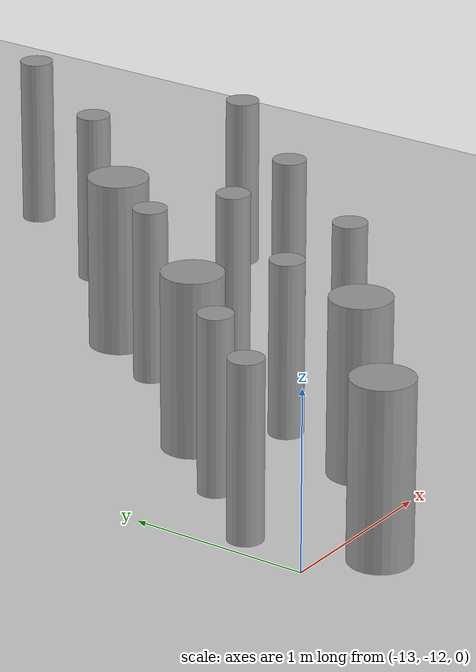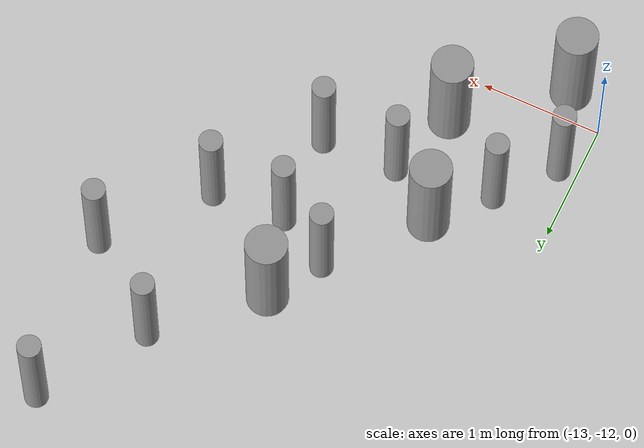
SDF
<sdf version="1.6">
 <world name="default">
  <model name="ground_plane">
   <static>1</static>
   <link name="link">
    <collision name="collision">
     <geometry><plane><normal>0 0 1</normal><size>100 100</size></plane></geometry>
     <surface><friction><ode><mu>100</mu><mu2>50</mu2></ode></friction></surface>
    </collision>
    <visual name="visual">
     <cast_shadows>0</cast_shadows>
     <geometry><plane><normal>0 0 1</normal><size>100 100</size></plane></geometry>
     <material>
      <script><uri>file://media/materials/scripts/gazebo.material</uri><name>Gazebo/Grey</name></script>
     </material>
    </visual>
   </link>
  </model>
  <model name="cyl_wall_clone_clone_1_clone_1_clone_clone_0_clone_1_clone_1_clone_1">
   <link name="link_0">
    <pose>-2.73893 -0.366465 0 0 -0 0</pose>
    <inertial>
     <mass>0.0374993</mass>
     <inertia>
      <ixx>0.00321281</ixx>
      <ixy>0</ixy>
      <ixz>0</ixz>
      <iyy>0.00321281</iyy>
      <iyz>0</iyz>
      <izz>0.000175774</izz>
     </inertia>
    </inertial>
    <visual name="visual">
     <geometry><cylinder><radius>0.0968661</radius><length>1</length></cylinder></geometry>
     <material>
      <lighting>1</lighting>
      <script><uri>file://media/materials/scripts/gazebo.material</uri><name>Gazebo/Grey</name></script>
      <ambient>0.3 0.3 0.3 1</ambient>
      <diffuse>0.7 0.7 0.7 1</diffuse>
      <specular>0.01 0.01 0.01 1</specular>
      <emissive>0 0 0 1</emissive>
     </material>
    </visual>
    <collision name="collision">
     <geometry><cylinder><radius>0.096866</radius><length>1</length></cylinder></geometry>
     <surface>
      <friction>
       <ode><mu>1</mu><mu2>1</mu2><fdir1>0 0 0</fdir1><slip1>0</slip1><slip2>0</slip2></ode>
       <torsional>
        <coefficient>1</coefficient>
        <patch_radius>0</patch_radius>
        <surface_radius>0</surface_radius>
        <use_patch_radius>1</use_patch_radius>
        <ode><slip>0</slip></ode>
       </torsional>
      </friction>
      <bounce><restitution_coefficient>0</restitution_coefficient><threshold>1e+06</threshold></bounce>
      <contact>
       <collide_without_contact>0</collide_without_contact>
       <collide_without_contact_bitmask>1</collide_without_contact_bitmask>
       <collide_bitmask>1</collide_bitmask>
       <ode>
        <soft_cfm>0</soft_cfm>
        <soft_erp>0.2</soft_erp>
        <kp>1e+13</kp>
        <kd>1</kd>
        <max_vel>0.01</max_vel>
        <min_depth>0</min_depth>
       </ode>
       <bullet>
        <split_impulse>1</split_impulse>
        <split_impulse_penetration_threshold>-0.01</split_impulse_penetration_threshold>
        <soft_cfm>0</soft_cfm>
        <soft_erp>0.2</soft_erp>
        <kp>1e+13</kp>
        <kd>1</kd>
       </bullet>
      </contact>
     </surface>
    </collision>
   </link>
   <link name="link_0_clone">
    <pose>-1.73893 0.61877 0 0 -0 0</pose>
    <inertial>
     <mass>0.0374993</mass>
     <inertia>
      <ixx>0.00321281</ixx>
      <ixy>0</ixy>
      <ixz>0</ixz>
      <iyy>0.00321281</iyy>
      <iyz>0</iyz>
      <izz>0.000175774</izz>
     </inertia>
    </inertial>
    <visual name="visual">
     <geometry><cylinder><radius>0.0968661</radius><length>1</length></cylinder></geometry>
     <material>
      <lighting>1</lighting>
      <script><uri>file://media/materials/scripts/gazebo.material</uri><name>Gazebo/Grey</name></script>
      <ambient>0.3 0.3 0.3 1</ambient>
      <diffuse>0.7 0.7 0.7 1</diffuse>
      <specular>0.01 0.01 0.01 1</specular>
      <emissive>0 0 0 1</emissive>
      <shader type="pixel"/>
     </material>
    </visual>
    <collision name="collision">
     <geometry><cylinder><radius>0.096866</radius><length>1</length></cylinder></geometry>
     <surface>
      <friction>
       <ode><mu>1</mu><mu2>1</mu2><fdir1>0 0 0</fdir1><slip1>0</slip1><slip2>0</slip2></ode>
       <torsional>
        <coefficient>1</coefficient>
        <patch_radius>0</patch_radius>
        <surface_radius>0</surface_radius>
        <use_patch_radius>1</use_patch_radius>
        <ode><slip>0</slip></ode>
       </torsional>
      </friction>
      <bounce><restitution_coefficient>0</restitution_coefficient><threshold>1e+06</threshold></bounce>
      <contact>
       <collide_without_contact>0</collide_without_contact>
       <collide_without_contact_bitmask>1</collide_without_contact_bitmask>
       <collide_bitmask>1</collide_bitmask>
       <ode>
        <soft_cfm>0</soft_cfm>
        <soft_erp>0.2</soft_erp>
        <kp>1e+13</kp>
        <kd>1</kd>
        <max_vel>0.01</max_vel>
        <min_depth>0</min_depth>
       </ode>
       <bullet>
        <split_impulse>1</split_impulse>
        <split_impulse_penetration_threshold>-0.01</split_impulse_penetration_threshold>
        <soft_cfm>0</soft_cfm>
        <soft_erp>0.2</soft_erp>
        <kp>1e+13</kp>
        <kd>1</kd>
       </bullet>
      </contact>
     </surface>
    </collision>
   </link>
   <link name="link_0_clone_clone">
    <pose>-0.327073 0.143919 0 0 -0 0</pose>
    <inertial>
     <mass>0.0374993</mass>
     <inertia>
      <ixx>0.00321281</ixx>
      <ixy>0</ixy>
      <ixz>0</ixz>
      <iyy>0.00321281</iyy>
      <iyz>0</iyz>
      <izz>0.000175774</izz>
     </inertia>
    </inertial>
    <visual name="visual">
     <geometry><cylinder><radius>0.0968661</radius><length>1</length></cylinder></geometry>
     <material>
      <lighting>1</lighting>
      <script><uri>file://media/materials/scripts/gazebo.material</uri><name>Gazebo/Grey</name></script>
      <ambient>0.3 0.3 0.3 1</ambient>
      <diffuse>0.7 0.7 0.7 1</diffuse>
      <specular>0.01 0.01 0.01 1</specular>
      <emissive>0 0 0 1</emissive>
      <shader type="pixel"/>
     </material>
    </visual>
    <collision name="collision">
     <geometry><cylinder><radius>0.096866</radius><length>1</length></cylinder></geometry>
     <surface>
      <friction>
       <ode><mu>1</mu><mu2>1</mu2><fdir1>0 0 0</fdir1><slip1>0</slip1><slip2>0</slip2></ode>
       <torsional>
        <coefficient>1</coefficient>
        <patch_radius>0</patch_radius>
        <surface_radius>0</surface_radius>
        <use_patch_radius>1</use_patch_radius>
        <ode><slip>0</slip></ode>
       </torsional>
      </friction>
      <bounce><restitution_coefficient>0</restitution_coefficient><threshold>1e+06</threshold></bounce>
      <contact>
       <collide_without_contact>0</collide_without_contact>
       <collide_without_contact_bitmask>1</collide_without_contact_bitmask>
       <collide_bitmask>1</collide_bitmask>
       <ode>
        <soft_cfm>0</soft_cfm>
        <soft_erp>0.2</soft_erp>
        <kp>1e+13</kp>
        <kd>1</kd>
        <max_vel>0.01</max_vel>
        <min_depth>0</min_depth>
       </ode>
       <bullet>
        <split_impulse>1</split_impulse>
        <split_impulse_penetration_threshold>-0.01</split_impulse_penetration_threshold>
        <soft_cfm>0</soft_cfm>
        <soft_erp>0.2</soft_erp>
        <kp>1e+13</kp>
        <kd>1</kd>
       </bullet>
      </contact>
     </surface>
    </collision>
   </link>
   <link name="link_0_clone_clone_0">
    <pose>1.26107 -0.419359 0 0 -0 0</pose>
    <inertial>
     <mass>0.0374993</mass>
     <inertia>
      <ixx>0.00321281</ixx>
      <ixy>0</ixy>
      <ixz>0</ixz>
      <iyy>0.00321281</iyy>
      <iyz>0</iyz>
      <izz>0.000175774</izz>
     </inertia>
    </inertial>
    <visual name="visual">
     <geometry><cylinder><radius>0.0968661</radius><length>1</length></cylinder></geometry>
     <material>
      <lighting>1</lighting>
      <script><uri>file://media/materials/scripts/gazebo.material</uri><name>Gazebo/Grey</name></script>
      <ambient>0.3 0.3 0.3 1</ambient>
      <diffuse>0.7 0.7 0.7 1</diffuse>
      <specular>0.01 0.01 0.01 1</specular>
      <emissive>0 0 0 1</emissive>
      <shader type="pixel"/>
     </material>
    </visual>
    <collision name="collision">
     <geometry><cylinder><radius>0.096866</radius><length>1</length></cylinder></geometry>
     <surface>
      <friction>
       <ode><mu>1</mu><mu2>1</mu2><fdir1>0 0 0</fdir1><slip1>0</slip1><slip2>0</slip2></ode>
       <torsional>
        <coefficient>1</coefficient>
        <patch_radius>0</patch_radius>
        <surface_radius>0</surface_radius>
        <use_patch_radius>1</use_patch_radius>
        <ode><slip>0</slip></ode>
       </torsional>
      </friction>
      <bounce><restitution_coefficient>0</restitution_coefficient><threshold>1e+06</threshold></bounce>
      <contact>
       <collide_without_contact>0</collide_without_contact>
       <collide_without_contact_bitmask>1</collide_without_contact_bitmask>
       <collide_bitmask>1</collide_bitmask>
       <ode>
        <soft_cfm>0</soft_cfm>
        <soft_erp>0.2</soft_erp>
        <kp>1e+13</kp>
        <kd>1</kd>
        <max_vel>0.01</max_vel>
        <min_depth>0</min_depth>
       </ode>
       <bullet>
        <split_impulse>1</split_impulse>
        <split_impulse_penetration_threshold>-0.01</split_impulse_penetration_threshold>
        <soft_cfm>0</soft_cfm>
        <soft_erp>0.2</soft_erp>
        <kp>1e+13</kp>
        <kd>1</kd>
       </bullet>
      </contact>
     </surface>
    </collision>
   </link>
   <link name="link_0_clone_clone_1">
    <pose>-1.73893 -0.277168 0 0 -0 0</pose>
    <inertial>
     <mass>0.0374993</mass>
     <inertia>
      <ixx>0.00321281</ixx>
      <ixy>0</ixy>
      <ixz>0</ixz>
      <iyy>0.00321281</iyy>
      <iyz>0</iyz>
      <izz>0.000175774</izz>
     </inertia>
    </inertial>
    <visual name="visual">
     <geometry><cylinder><radius>0.0968661</radius><length>1</length></cylinder></geometry>
     <material>
      <lighting>1</lighting>
      <script><uri>file://media/materials/scripts/gazebo.material</uri><name>Gazebo/Grey</name></script>
      <ambient>0.3 0.3 0.3 1</ambient>
      <diffuse>0.7 0.7 0.7 1</diffuse>
      <specular>0.01 0.01 0.01 1</specular>
      <emissive>0 0 0 1</emissive>
      <shader type="pixel"/>
     </material>
    </visual>
    <collision name="collision">
     <geometry><cylinder><radius>0.096866</radius><length>1</length></cylinder></geometry>
     <surface>
      <friction>
       <ode><mu>1</mu><mu2>1</mu2><fdir1>0 0 0</fdir1><slip1>0</slip1><slip2>0</slip2></ode>
       <torsional>
        <coefficient>1</coefficient>
        <patch_radius>0</patch_radius>
        <surface_radius>0</surface_radius>
        <use_patch_radius>1</use_patch_radius>
        <ode><slip>0</slip></ode>
       </torsional>
      </friction>
      <bounce><restitution_coefficient>0</restitution_coefficient><threshold>1e+06</threshold></bounce>
      <contact>
       <collide_without_contact>0</collide_without_contact>
       <collide_without_contact_bitmask>1</collide_without_contact_bitmask>
       <collide_bitmask>1</collide_bitmask>
       <ode>
        <soft_cfm>0</soft_cfm>
        <soft_erp>0.2</soft_erp>
        <kp>1e+13</kp>
        <kd>1</kd>
        <max_vel>0.01</max_vel>
        <min_depth>0</min_depth>
       </ode>
       <bullet>
        <split_impulse>1</split_impulse>
        <split_impulse_penetration_threshold>-0.01</split_impulse_penetration_threshold>
        <soft_cfm>0</soft_cfm>
        <soft_erp>0.2</soft_erp>
        <kp>1e+13</kp>
        <kd>1</kd>
       </bullet>
      </contact>
     </surface>
    </collision>
   </link>
   <link name="link_0_clone_clone_2">
    <pose>-0.738934 0.593961 0 0 -0 0</pose>
    <inertial>
     <mass>0.0374993</mass>
     <inertia>
      <ixx>0.00321281</ixx>
      <ixy>0</ixy>
      <ixz>0</ixz>
      <iyy>0.00321281</iyy>
      <iyz>0</iyz>
      <izz>0.000175774</izz>
     </inertia>
    </inertial>
    <visual name="visual">
     <geometry><cylinder><radius>0.0968661</radius><length>1</length></cylinder></geometry>
     <material>
      <lighting>1</lighting>
      <script><uri>file://media/materials/scripts/gazebo.material</uri><name>Gazebo/Grey</name></script>
      <ambient>0.3 0.3 0.3 1</ambient>
      <diffuse>0.7 0.7 0.7 1</diffuse>
      <specular>0.01 0.01 0.01 1</specular>
      <emissive>0 0 0 1</emissive>
      <shader type="pixel"/>
     </material>
    </visual>
    <collision name="collision">
     <geometry><cylinder><radius>0.096866</radius><length>1</length></cylinder></geometry>
     <surface>
      <friction>
       <ode><mu>1</mu><mu2>1</mu2><fdir1>0 0 0</fdir1><slip1>0</slip1><slip2>0</slip2></ode>
       <torsional>
        <coefficient>1</coefficient>
        <patch_radius>0</patch_radius>
        <surface_radius>0</surface_radius>
        <use_patch_radius>1</use_patch_radius>
        <ode><slip>0</slip></ode>
       </torsional>
      </friction>
      <bounce><restitution_coefficient>0</restitution_coefficient><threshold>1e+06</threshold></bounce>
      <contact>
       <collide_without_contact>0</collide_without_contact>
       <collide_without_contact_bitmask>1</collide_without_contact_bitmask>
       <collide_bitmask>1</collide_bitmask>
       <ode>
        <soft_cfm>0</soft_cfm>
        <soft_erp>0.2</soft_erp>
        <kp>1e+13</kp>
        <kd>1</kd>
        <max_vel>0.01</max_vel>
        <min_depth>0</min_depth>
       </ode>
       <bullet>
        <split_impulse>1</split_impulse>
        <split_impulse_penetration_threshold>-0.01</split_impulse_penetration_threshold>
        <soft_cfm>0</soft_cfm>
        <soft_erp>0.2</soft_erp>
        <kp>1e+13</kp>
        <kd>1</kd>
       </bullet>
      </contact>
     </surface>
    </collision>
   </link>
   <link name="link_0_clone_clone_3">
    <pose>0.261066 0.624849 0 0 -0 0</pose>
    <inertial>
     <mass>0.0374993</mass>
     <inertia>
      <ixx>0.00321281</ixx>
      <ixy>0</ixy>
      <ixz>0</ixz>
      <iyy>0.00321281</iyy>
      <iyz>0</iyz>
      <izz>0.000175774</izz>
     </inertia>
    </inertial>
    <visual name="visual">
     <geometry><cylinder><radius>0.0968661</radius><length>1</length></cylinder></geometry>
     <material>
      <lighting>1</lighting>
      <script><uri>file://media/materials/scripts/gazebo.material</uri><name>Gazebo/Grey</name></script>
      <ambient>0.3 0.3 0.3 1</ambient>
      <diffuse>0.7 0.7 0.7 1</diffuse>
      <specular>0.01 0.01 0.01 1</specular>
      <emissive>0 0 0 1</emissive>
      <shader type="pixel"/>
     </material>
    </visual>
    <collision name="collision">
     <geometry><cylinder><radius>0.096866</radius><length>1</length></cylinder></geometry>
     <surface>
      <friction>
       <ode><mu>1</mu><mu2>1</mu2><fdir1>0 0 0</fdir1><slip1>0</slip1><slip2>0</slip2></ode>
       <torsional>
        <coefficient>1</coefficient>
        <patch_radius>0</patch_radius>
        <surface_radius>0</surface_radius>
        <use_patch_radius>1</use_patch_radius>
        <ode><slip>0</slip></ode>
       </torsional>
      </friction>
      <bounce><restitution_coefficient>0</restitution_coefficient><threshold>1e+06</threshold></bounce>
      <contact>
       <collide_without_contact>0</collide_without_contact>
       <collide_without_contact_bitmask>1</collide_without_contact_bitmask>
       <collide_bitmask>1</collide_bitmask>
       <ode>
        <soft_cfm>0</soft_cfm>
        <soft_erp>0.2</soft_erp>
        <kp>1e+13</kp>
        <kd>1</kd>
        <max_vel>0.01</max_vel>
        <min_depth>0</min_depth>
       </ode>
       <bullet>
        <split_impulse>1</split_impulse>
        <split_impulse_penetration_threshold>-0.01</split_impulse_penetration_threshold>
        <soft_cfm>0</soft_cfm>
        <soft_erp>0.2</soft_erp>
        <kp>1e+13</kp>
        <kd>1</kd>
       </bullet>
      </contact>
     </surface>
    </collision>
   </link>
   <link name="link_0_clone_clone_4">
    <pose>-0.239049 -0.353105 0 0 -0 0</pose>
    <inertial>
     <mass>0.0374993</mass>
     <inertia>
      <ixx>0.00321281</ixx>
      <ixy>0</ixy>
      <ixz>0</ixz>
      <iyy>0.00321281</iyy>
      <iyz>0</iyz>
      <izz>0.000175774</izz>
     </inertia>
    </inertial>
    <visual name="visual">
     <geometry><cylinder><radius>0.0968661</radius><length>1</length></cylinder></geometry>
     <material>
      <lighting>1</lighting>
      <script><uri>file://media/materials/scripts/gazebo.material</uri><name>Gazebo/Grey</name></script>
      <ambient>0.3 0.3 0.3 1</ambient>
      <diffuse>0.7 0.7 0.7 1</diffuse>
      <specular>0.01 0.01 0.01 1</specular>
      <emissive>0 0 0 1</emissive>
      <shader type="pixel"/>
     </material>
    </visual>
    <collision name="collision">
     <geometry><cylinder><radius>0.096866</radius><length>1</length></cylinder></geometry>
     <surface>
      <friction>
       <ode><mu>1</mu><mu2>1</mu2><fdir1>0 0 0</fdir1><slip1>0</slip1><slip2>0</slip2></ode>
       <torsional>
        <coefficient>1</coefficient>
        <patch_radius>0</patch_radius>
        <surface_radius>0</surface_radius>
        <use_patch_radius>1</use_patch_radius>
        <ode><slip>0</slip></ode>
       </torsional>
      </friction>
      <bounce><restitution_coefficient>0</restitution_coefficient><threshold>1e+06</threshold></bounce>
      <contact>
       <collide_without_contact>0</collide_without_contact>
       <collide_without_contact_bitmask>1</collide_without_contact_bitmask>
       <collide_bitmask>1</collide_bitmask>
       <ode>
        <soft_cfm>0</soft_cfm>
        <soft_erp>0.2</soft_erp>
        <kp>1e+13</kp>
        <kd>1</kd>
        <max_vel>0.01</max_vel>
        <min_depth>0</min_depth>
       </ode>
       <bullet>
        <split_impulse>1</split_impulse>
        <split_impulse_penetration_threshold>-0.01</split_impulse_penetration_threshold>
        <soft_cfm>0</soft_cfm>
        <soft_erp>0.2</soft_erp>
        <kp>1e+13</kp>
        <kd>1</kd>
       </bullet>
      </contact>
     </surface>
    </collision>
   </link>
   <link name="link_0_clone_clone_5">
    <pose>0.672792 0.143919 0 0 -0 0</pose>
    <inertial>
     <mass>0.0374993</mass>
     <inertia>
      <ixx>0.00321281</ixx>
      <ixy>0</ixy>
      <ixz>0</ixz>
      <iyy>0.00321281</iyy>
      <iyz>0</iyz>
      <izz>0.000175774</izz>
     </inertia>
    </inertial>
    <visual name="visual">
     <geometry><cylinder><radius>0.0968661</radius><length>1</length></cylinder></geometry>
     <material>
      <lighting>1</lighting>
      <script><uri>file://media/materials/scripts/gazebo.material</uri><name>Gazebo/Grey</name></script>
      <ambient>0.3 0.3 0.3 1</ambient>
      <diffuse>0.7 0.7 0.7 1</diffuse>
      <specular>0.01 0.01 0.01 1</specular>
      <emissive>0 0 0 1</emissive>
      <shader type="pixel"/>
     </material>
    </visual>
    <collision name="collision">
     <geometry><cylinder><radius>0.096866</radius><length>1</length></cylinder></geometry>
     <surface>
      <friction>
       <ode><mu>1</mu><mu2>1</mu2><fdir1>0 0 0</fdir1><slip1>0</slip1><slip2>0</slip2></ode>
       <torsional>
        <coefficient>1</coefficient>
        <patch_radius>0</patch_radius>
        <surface_radius>0</surface_radius>
        <use_patch_radius>1</use_patch_radius>
        <ode><slip>0</slip></ode>
       </torsional>
      </friction>
      <bounce><restitution_coefficient>0</restitution_coefficient><threshold>1e+06</threshold></bounce>
      <contact>
       <collide_without_contact>0</collide_without_contact>
       <collide_without_contact_bitmask>1</collide_without_contact_bitmask>
       <collide_bitmask>1</collide_bitmask>
       <ode>
        <soft_cfm>0</soft_cfm>
        <soft_erp>0.2</soft_erp>
        <kp>1e+13</kp>
        <kd>1</kd>
        <max_vel>0.01</max_vel>
        <min_depth>0</min_depth>
       </ode>
       <bullet>
        <split_impulse>1</split_impulse>
        <split_impulse_penetration_threshold>-0.01</split_impulse_penetration_threshold>
        <soft_cfm>0</soft_cfm>
        <soft_erp>0.2</soft_erp>
        <kp>1e+13</kp>
        <kd>1</kd>
       </bullet>
      </contact>
     </surface>
    </collision>
   </link>
   <link name="link_0_clone_clone_6">
    <pose>1.84596 -0.433423 0 0 -0 0</pose>
    <inertial>
     <mass>0.0374993</mass>
     <inertia>
      <ixx>0.00321281</ixx>
      <ixy>0</ixy>
      <ixz>0</ixz>
      <iyy>0.00321281</iyy>
      <iyz>0</iyz>
      <izz>0.000175774</izz>
     </inertia>
    </inertial>
    <visual name="visual">
     <geometry><cylinder><radius>0.0968661</radius><length>1</length></cylinder></geometry>
     <material>
      <lighting>1</lighting>
      <script><uri>file://media/materials/scripts/gazebo.material</uri><name>Gazebo/Grey</name></script>
      <ambient>0.3 0.3 0.3 1</ambient>
      <diffuse>0.7 0.7 0.7 1</diffuse>
      <specular>0.01 0.01 0.01 1</specular>
      <emissive>0 0 0 1</emissive>
      <shader type="pixel"/>
     </material>
    </visual>
    <collision name="collision">
     <geometry><cylinder><radius>0.096866</radius><length>1</length></cylinder></geometry>
     <surface>
      <friction>
       <ode><mu>1</mu><mu2>1</mu2><fdir1>0 0 0</fdir1><slip1>0</slip1><slip2>0</slip2></ode>
       <torsional>
        <coefficient>1</coefficient>
        <patch_radius>0</patch_radius>
        <surface_radius>0</surface_radius>
        <use_patch_radius>1</use_patch_radius>
        <ode><slip>0</slip></ode>
       </torsional>
      </friction>
      <bounce><restitution_coefficient>0</restitution_coefficient><threshold>1e+06</threshold></bounce>
      <contact>
       <collide_without_contact>0</collide_without_contact>
       <collide_without_contact_bitmask>1</collide_without_contact_bitmask>
       <collide_bitmask>1</collide_bitmask>
       <ode>
        <soft_cfm>0</soft_cfm>
        <soft_erp>0.2</soft_erp>
        <kp>1e+13</kp>
        <kd>1</kd>
        <max_vel>0.01</max_vel>
        <min_depth>0</min_depth>
       </ode>
       <bullet>
        <split_impulse>1</split_impulse>
        <split_impulse_penetration_threshold>-0.01</split_impulse_penetration_threshold>
        <soft_cfm>0</soft_cfm>
        <soft_erp>0.2</soft_erp>
        <kp>1e+13</kp>
        <kd>1</kd>
       </bullet>
      </contact>
     </surface>
    </collision>
   </link>
   <link name="link_1">
    <pose>-0.738934 -0.397931 0 0 -0 0</pose>
    <inertial>
     <mass>0.117398</mass>
     <inertia>
      <ixx>0.0106445</ixx>
      <ixy>0</ixy>
      <ixz>0</ixz>
      <iyy>0.0106445</iyy>
      <iyz>0</iyz>
      <izz>0.00172278</izz>
     </inertia>
    </inertial>
    <visual name="visual">
     <geometry><cylinder><radius>0.171317</radius><length>1</length></cylinder></geometry>
     <material>
      <lighting>1</lighting>
      <script><uri>file://media/materials/scripts/gazebo.material</uri><name>Gazebo/Grey</name></script>
      <ambient>0.3 0.3 0.3 1</ambient>
      <diffuse>0.7 0.7 0.7 1</diffuse>
      <specular>0.01 0.01 0.01 1</specular>
      <emissive>0 0 0 1</emissive>
     </material>
    </visual>
    <collision name="collision">
     <geometry><cylinder><radius>0.171317</radius><length>1</length></cylinder></geometry>
     <surface>
      <friction>
       <ode><mu>1</mu><mu2>1</mu2><fdir1>0 0 0</fdir1><slip1>0</slip1><slip2>0</slip2></ode>
       <torsional>
        <coefficient>1</coefficient>
        <patch_radius>0</patch_radius>
        <surface_radius>0</surface_radius>
        <use_patch_radius>1</use_patch_radius>
        <ode><slip>0</slip></ode>
       </torsional>
      </friction>
      <bounce><restitution_coefficient>0</restitution_coefficient><threshold>1e+06</threshold></bounce>
      <contact>
       <collide_without_contact>0</collide_without_contact>
       <collide_without_contact_bitmask>1</collide_without_contact_bitmask>
       <collide_bitmask>1</collide_bitmask>
       <ode>
        <soft_cfm>0</soft_cfm>
        <soft_erp>0.2</soft_erp>
        <kp>1e+13</kp>
        <kd>1</kd>
        <max_vel>0.01</max_vel>
        <min_depth>0</min_depth>
       </ode>
       <bullet>
        <split_impulse>1</split_impulse>
        <split_impulse_penetration_threshold>-0.01</split_impulse_penetration_threshold>
        <soft_cfm>0</soft_cfm>
        <soft_erp>0.2</soft_erp>
        <kp>1e+13</kp>
        <kd>1</kd>
       </bullet>
      </contact>
     </surface>
    </collision>
   </link>
   <link name="link_1_clone">
    <pose>0.697784 -0.380861 0 0 -0 0</pose>
    <inertial>
     <mass>0.117398</mass>
     <inertia>
      <ixx>0.0106445</ixx>
      <ixy>0</ixy>
      <ixz>0</ixz>
      <iyy>0.0106445</iyy>
      <iyz>0</iyz>
      <izz>0.00172278</izz>
     </inertia>
    </inertial>
    <visual name="visual">
     <geometry><cylinder><radius>0.171317</radius><length>1</length></cylinder></geometry>
     <material>
      <lighting>1</lighting>
      <script><uri>file://media/materials/scripts/gazebo.material</uri><name>Gazebo/Grey</name></script>
      <ambient>0.3 0.3 0.3 1</ambient>
      <diffuse>0.7 0.7 0.7 1</diffuse>
      <specular>0.01 0.01 0.01 1</specular>
      <emissive>0 0 0 1</emissive>
      <shader type="pixel"/>
     </material>
    </visual>
    <collision name="collision">
     <geometry><cylinder><radius>0.171317</radius><length>1</length></cylinder></geometry>
     <surface>
      <friction>
       <ode><mu>1</mu><mu2>1</mu2><fdir1>0 0 0</fdir1><slip1>0</slip1><slip2>0</slip2></ode>
       <torsional>
        <coefficient>1</coefficient>
        <patch_radius>0</patch_radius>
        <surface_radius>0</surface_radius>
        <use_patch_radius>1</use_patch_radius>
        <ode><slip>0</slip></ode>
       </torsional>
      </friction>
      <bounce><restitution_coefficient>0</restitution_coefficient><threshold>1e+06</threshold></bounce>
      <contact>
       <collide_without_contact>0</collide_without_contact>
       <collide_without_contact_bitmask>1</collide_without_contact_bitmask>
       <collide_bitmask>1</collide_bitmask>
       <ode>
        <soft_cfm>0</soft_cfm>
        <soft_erp>0.2</soft_erp>
        <kp>1e+13</kp>
        <kd>1</kd>
        <max_vel>0.01</max_vel>
        <min_depth>0</min_depth>
       </ode>
       <bullet>
        <split_impulse>1</split_impulse>
        <split_impulse_penetration_threshold>-0.01</split_impulse_penetration_threshold>
        <soft_cfm>0</soft_cfm>
        <soft_erp>0.2</soft_erp>
        <kp>1e+13</kp>
        <kd>1</kd>
       </bullet>
      </contact>
     </surface>
    </collision>
   </link>
   <link name="link_1_clone_0">
    <pose>1.26107 0.358974 0 0 -0 0</pose>
    <inertial>
     <mass>0.117398</mass>
     <inertia>
      <ixx>0.0106445</ixx>
      <ixy>0</ixy>
      <ixz>0</ixz>
      <iyy>0.0106445</iyy>
      <iyz>0</iyz>
      <izz>0.00172278</izz>
     </inertia>
    </inertial>
    <visual name="visual">
     <geometry><cylinder><radius>0.171317</radius><length>1</length></cylinder></geometry>
     <material>
      <lighting>1</lighting>
      <script><uri>file://media/materials/scripts/gazebo.material</uri><name>Gazebo/Grey</name></script>
      <ambient>0.3 0.3 0.3 1</ambient>
      <diffuse>0.7 0.7 0.7 1</diffuse>
      <specular>0.01 0.01 0.01 1</specular>
      <emissive>0 0 0 1</emissive>
      <shader type="pixel"/>
     </material>
    </visual>
    <collision name="collision">
     <geometry><cylinder><radius>0.171317</radius><length>1</length></cylinder></geometry>
     <surface>
      <friction>
       <ode><mu>1</mu><mu2>1</mu2><fdir1>0 0 0</fdir1><slip1>0</slip1><slip2>0</slip2></ode>
       <torsional>
        <coefficient>1</coefficient>
        <patch_radius>0</patch_radius>
        <surface_radius>0</surface_radius>
        <use_patch_radius>1</use_patch_radius>
        <ode><slip>0</slip></ode>
       </torsional>
      </friction>
      <bounce><restitution_coefficient>0</restitution_coefficient><threshold>1e+06</threshold></bounce>
      <contact>
       <collide_without_contact>0</collide_without_contact>
       <collide_without_contact_bitmask>1</collide_without_contact_bitmask>
       <collide_bitmask>1</collide_bitmask>
       <ode>
        <soft_cfm>0</soft_cfm>
        <soft_erp>0.2</soft_erp>
        <kp>1e+13</kp>
        <kd>1</kd>
        <max_vel>0.01</max_vel>
        <min_depth>0</min_depth>
       </ode>
       <bullet>
        <split_impulse>1</split_impulse>
        <split_impulse_penetration_threshold>-0.01</split_impulse_penetration_threshold>
        <soft_cfm>0</soft_cfm>
        <soft_erp>0.2</soft_erp>
        <kp>1e+13</kp>
        <kd>1</kd>
       </bullet>
      </contact>
     </surface>
    </collision>
   </link>
   <link name="link_1_clone_1">
    <pose>2.26107 0.143919 0 0 -0 0</pose>
    <inertial>
     <mass>0.117398</mass>
     <inertia>
      <ixx>0.0106445</ixx>
      <ixy>0</ixy>
      <ixz>0</ixz>
      <iyy>0.0106445</iyy>
      <iyz>0</iyz>
      <izz>0.00172278</izz>
     </inertia>
    </inertial>
    <visual name="visual">
     <geometry><cylinder><radius>0.171317</radius><length>1</length></cylinder></geometry>
     <material>
      <lighting>1</lighting>
      <script><uri>file://media/materials/scripts/gazebo.material</uri><name>Gazebo/Grey</name></script>
      <ambient>0.3 0.3 0.3 1</ambient>
      <diffuse>0.7 0.7 0.7 1</diffuse>
      <specular>0.01 0.01 0.01 1</specular>
      <emissive>0 0 0 1</emissive>
      <shader type="pixel"/>
     </material>
    </visual>
    <collision name="collision">
     <geometry><cylinder><radius>0.171317</radius><length>1</length></cylinder></geometry>
     <surface>
      <friction>
       <ode><mu>1</mu><mu2>1</mu2><fdir1>0 0 0</fdir1><slip1>0</slip1><slip2>0</slip2></ode>
       <torsional>
        <coefficient>1</coefficient>
        <patch_radius>0</patch_radius>
        <surface_radius>0</surface_radius>
        <use_patch_radius>1</use_patch_radius>
        <ode><slip>0</slip></ode>
       </torsional>
      </friction>
      <bounce><restitution_coefficient>0</restitution_coefficient><threshold>1e+06</threshold></bounce>
      <contact>
       <collide_without_contact>0</collide_without_contact>
       <collide_without_contact_bitmask>1</collide_without_contact_bitmask>
       <collide_bitmask>1</collide_bitmask>
       <ode>
        <soft_cfm>0</soft_cfm>
        <soft_erp>0.2</soft_erp>
        <kp>1e+13</kp>
        <kd>1</kd>
        <max_vel>0.01</max_vel>
        <min_depth>0</min_depth>
       </ode>
       <bullet>
        <split_impulse>1</split_impulse>
        <split_impulse_penetration_threshold>-0.01</split_impulse_penetration_threshold>
        <soft_cfm>0</soft_cfm>
        <soft_erp>0.2</soft_erp>
        <kp>1e+13</kp>
        <kd>1</kd>
       </bullet>
      </contact>
     </surface>
    </collision>
   </link>
   <static>1</static>
   <pose>-11.3621 -10.3798 0.5 0 0 -2.24061</pose>
  </model>
 </world>
</sdf>
